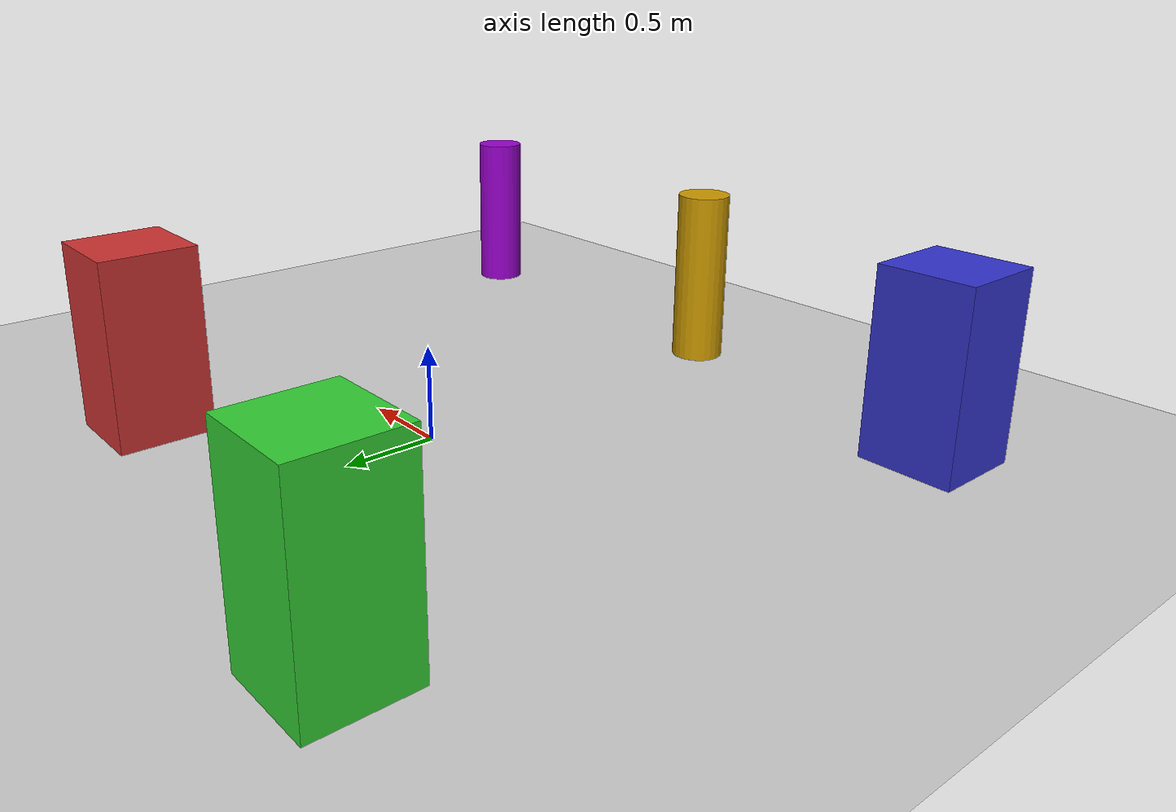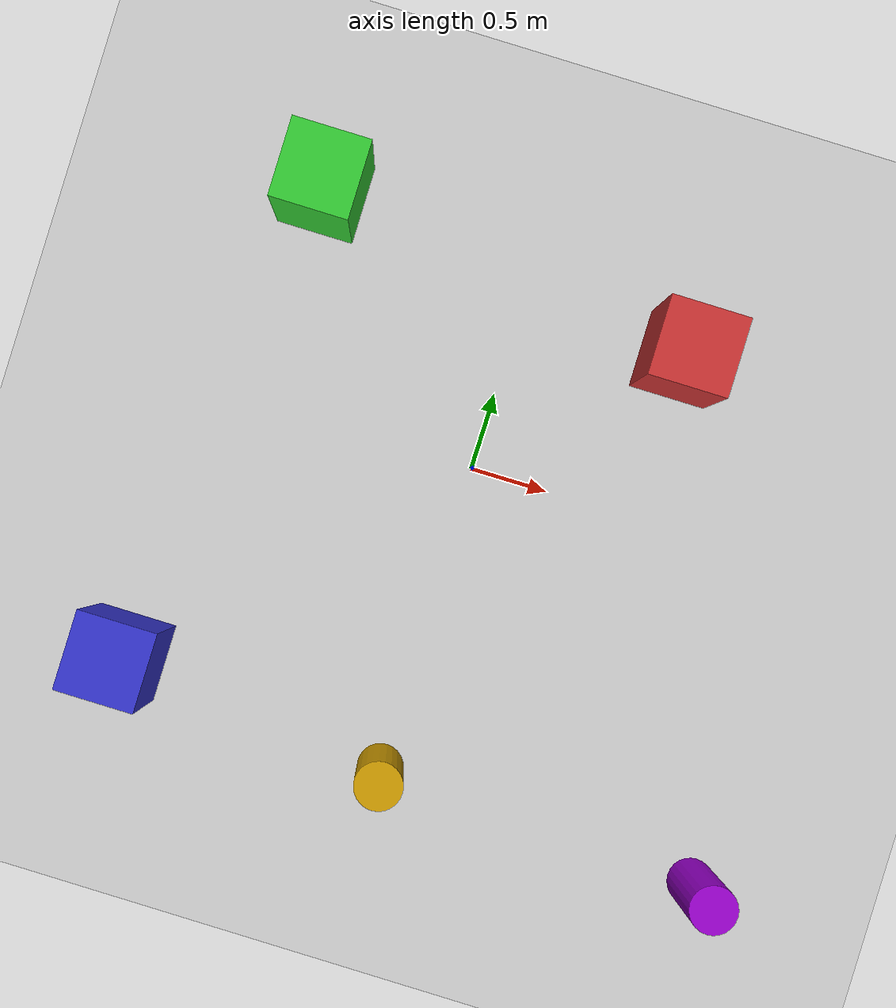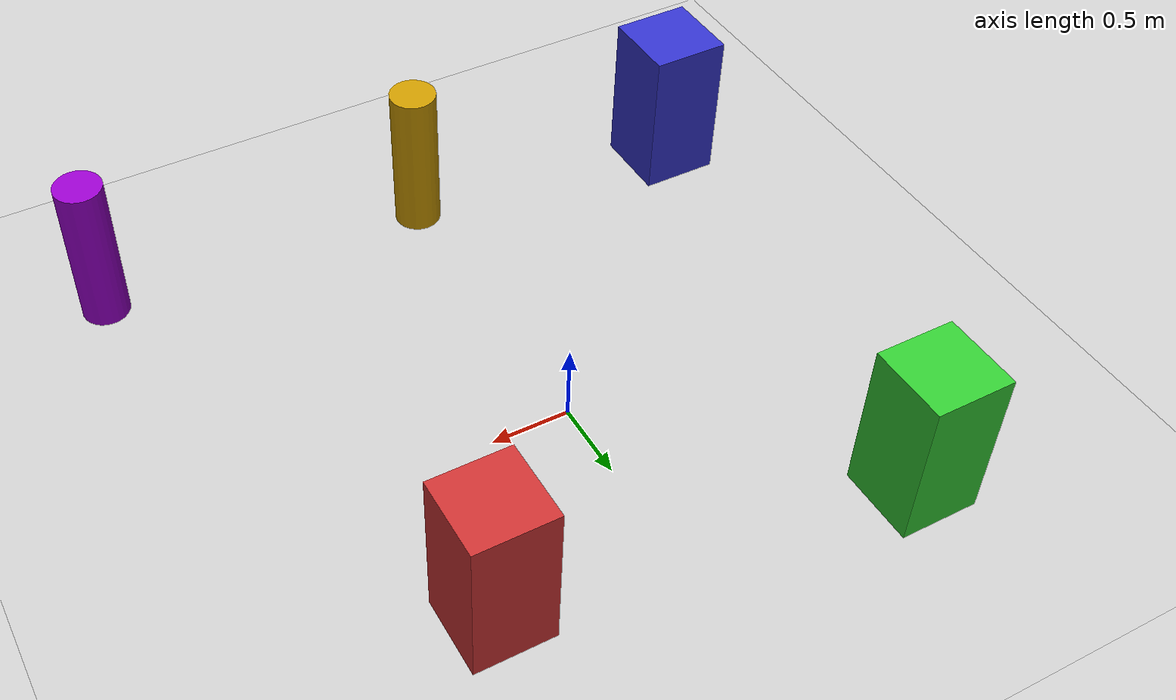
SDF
<?xml version="1.0" ?>
<sdf version="1.6">
  <world name="obstacle_course">
    <physics name="4ms" type="ignored">
      <max_step_size>0.004</max_step_size>
      <real_time_factor>1.0</real_time_factor>
      <real_time_update_rate>250</real_time_update_rate>
    </physics>
    <plugin
      filename="gz-sim-physics-system"
      name="gz::sim::systems::Physics">
    </plugin>
    <plugin
      filename="gz-sim-user-commands-system"
      name="gz::sim::systems::UserCommands">
    </plugin>
    <plugin
      filename="gz-sim-scene-broadcaster-system"
      name="gz::sim::systems::SceneBroadcaster">
    </plugin>
    <plugin
      filename="gz-sim-contact-system"
      name="gz::sim::systems::Contact">
    </plugin>
    <plugin
      filename="gz-sim-sensors-system"
      name="gz::sim::systems::Sensors">
      <render_engine>ogre2</render_engine>
    </plugin>

    <light type="directional" name="sun">
      <cast_shadows>true</cast_shadows>
      <pose>0 0 10 0 0 0</pose>
      <diffuse>0.8 0.8 0.8 1</diffuse>
      <specular>0.2 0.2 0.2 1</specular>
      <attenuation>
        <range>1000</range>
        <constant>0.9</constant>
        <linear>0.01</linear>
        <quadratic>0.001</quadratic>
      </attenuation>
      <direction>-0.5 0.1 -0.9</direction>
    </light>

    <model name="ground_plane">
      <static>true</static>
      <link name="link">
        <collision name="collision">
          <geometry>
            <plane>
              <normal>0 0 1</normal>
              <size>100 100</size>
            </plane>
          </geometry>
        </collision>
        <visual name="visual">
          <geometry>
            <plane>
              <normal>0 0 1</normal>
              <size>100 100</size>
            </plane>
          </geometry>
          <material>
            <ambient>0.8 0.8 0.8 1</ambient>
            <diffuse>0.8 0.8 0.8 1</diffuse>
            <specular>0.8 0.8 0.8 1</specular>
          </material>
        </visual>
      </link>
    </model>

    <!-- Box pillar at ~1.5m, 45 deg (NE) -->
    <model name="box_pillar_1">
      <static>true</static>
      <pose>1.06 1.06 0.5 0 0 0</pose>
      <link name="link">
        <collision name="collision">
          <geometry>
            <box><size>0.5 0.5 1.0</size></box>
          </geometry>
        </collision>
        <visual name="visual">
          <geometry>
            <box><size>0.5 0.5 1.0</size></box>
          </geometry>
          <material>
            <ambient>0.8 0.2 0.2 1</ambient>
            <diffuse>0.8 0.2 0.2 1</diffuse>
          </material>
        </visual>
      </link>
    </model>

    <!-- Box pillar at ~2.0m, 135 deg (NW) -->
    <model name="box_pillar_2">
      <static>true</static>
      <pose>-1.41 1.41 0.5 0 0 0</pose>
      <link name="link">
        <collision name="collision">
          <geometry>
            <box><size>0.5 0.5 1.0</size></box>
          </geometry>
        </collision>
        <visual name="visual">
          <geometry>
            <box><size>0.5 0.5 1.0</size></box>
          </geometry>
          <material>
            <ambient>0.2 0.8 0.2 1</ambient>
            <diffuse>0.2 0.8 0.2 1</diffuse>
          </material>
        </visual>
      </link>
    </model>

    <!-- Box pillar at ~2.5m, 225 deg (SW) -->
    <model name="box_pillar_3">
      <static>true</static>
      <pose>-1.77 -1.77 0.5 0 0 0</pose>
      <link name="link">
        <collision name="collision">
          <geometry>
            <box><size>0.5 0.5 1.0</size></box>
          </geometry>
        </collision>
        <visual name="visual">
          <geometry>
            <box><size>0.5 0.5 1.0</size></box>
          </geometry>
          <material>
            <ambient>0.2 0.2 0.8 1</ambient>
            <diffuse>0.2 0.2 0.8 1</diffuse>
          </material>
        </visual>
      </link>
    </model>

    <!-- Cylinder at ~2.0m, 270 deg (S) -->
    <model name="cylinder_1">
      <static>true</static>
      <pose>0.0 -2.0 0.5 0 0 0</pose>
      <link name="link">
        <collision name="collision">
          <geometry>
            <cylinder><radius>0.15</radius><length>1.0</length></cylinder>
          </geometry>
        </collision>
        <visual name="visual">
          <geometry>
            <cylinder><radius>0.15</radius><length>1.0</length></cylinder>
          </geometry>
          <material>
            <ambient>0.8 0.6 0.0 1</ambient>
            <diffuse>0.8 0.6 0.0 1</diffuse>
          </material>
        </visual>
      </link>
    </model>

    <!-- Cylinder at ~3.0m, 315 deg (SE) -->
    <model name="cylinder_2">
      <static>true</static>
      <pose>2.12 -2.12 0.5 0 0 0</pose>
      <link name="link">
        <collision name="collision">
          <geometry>
            <cylinder><radius>0.15</radius><length>1.0</length></cylinder>
          </geometry>
        </collision>
        <visual name="visual">
          <geometry>
            <cylinder><radius>0.15</radius><length>1.0</length></cylinder>
          </geometry>
          <material>
            <ambient>0.6 0.0 0.8 1</ambient>
            <diffuse>0.6 0.0 0.8 1</diffuse>
          </material>
        </visual>
      </link>
    </model>

  </world>
</sdf>
